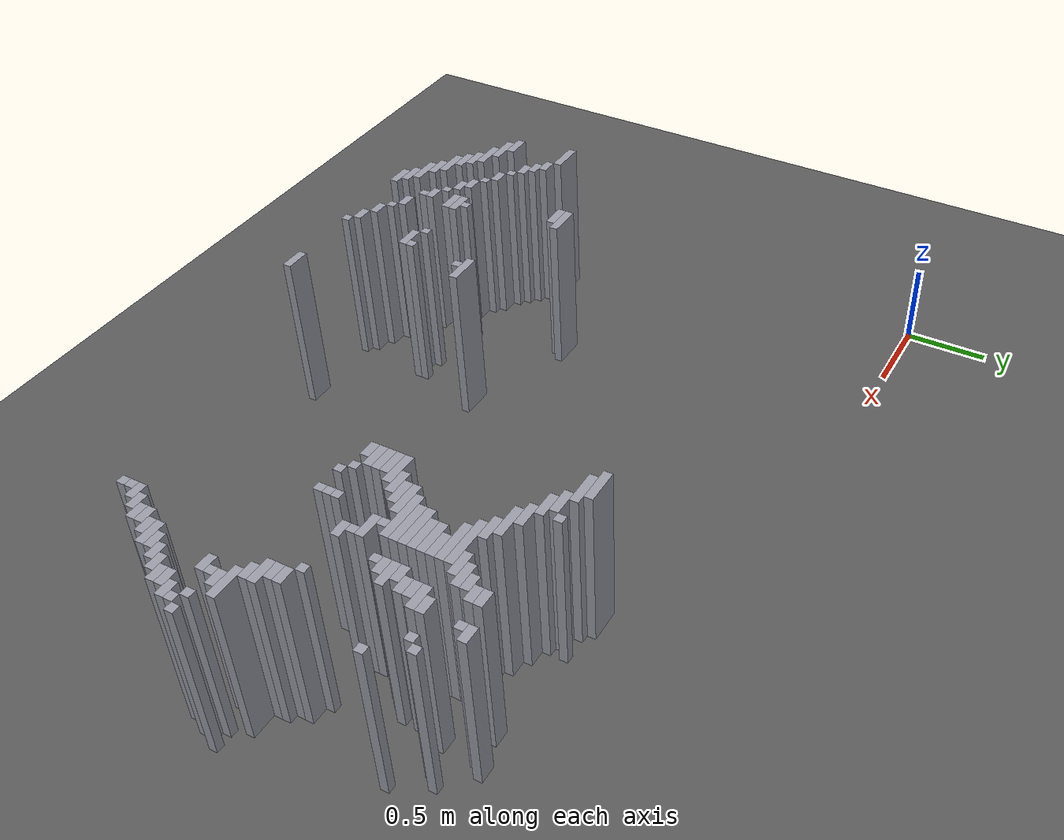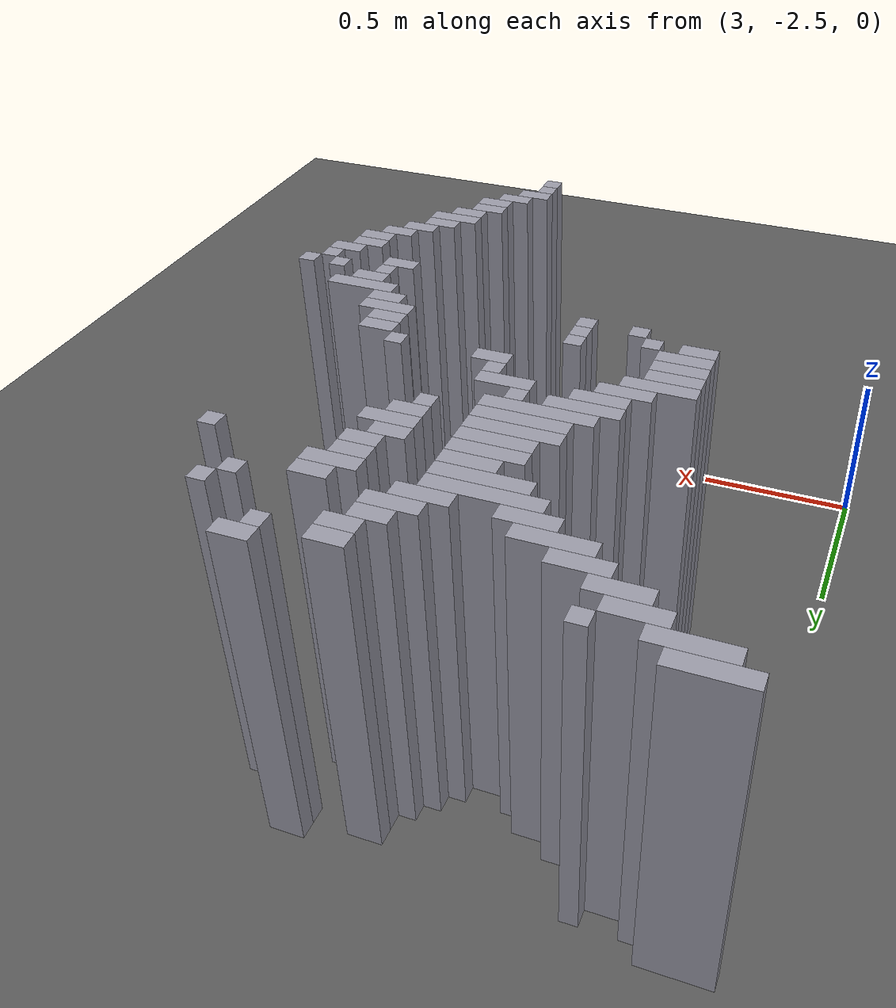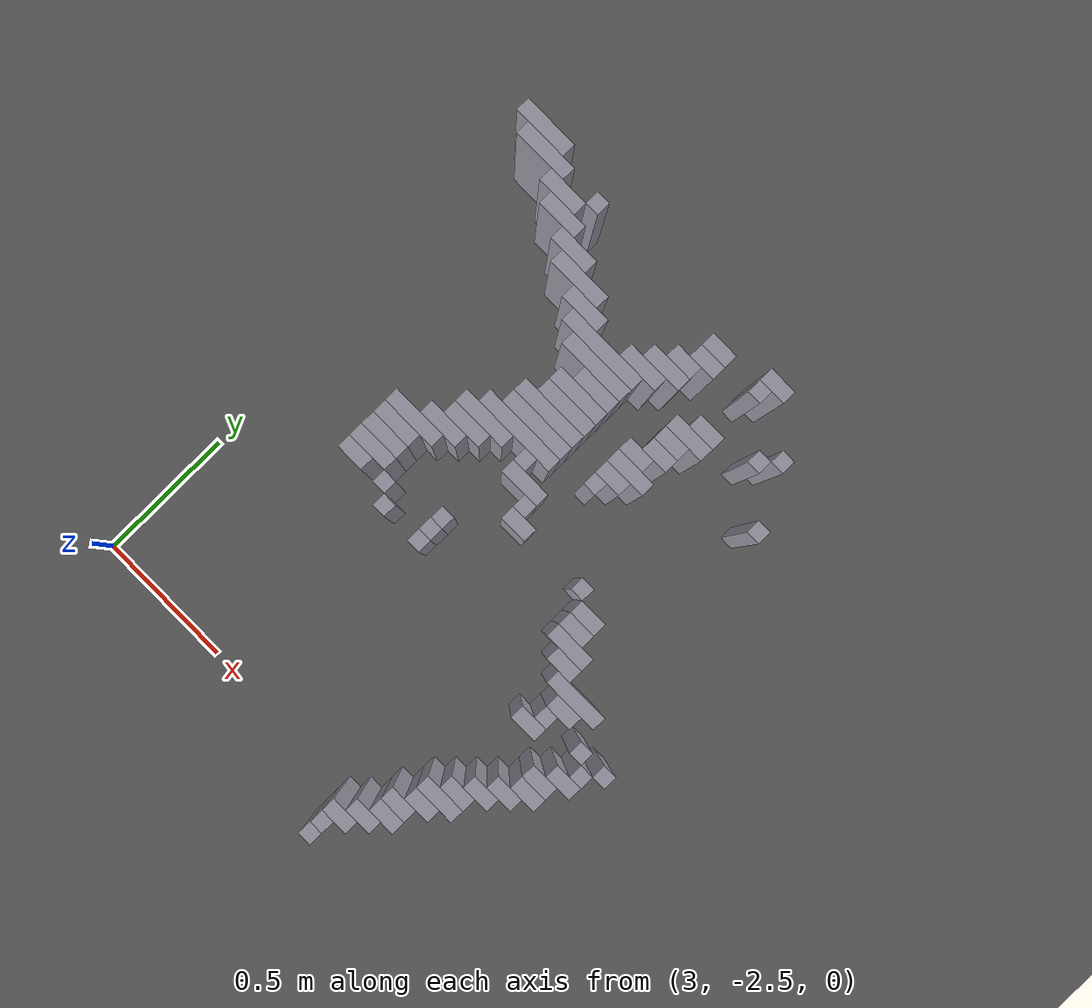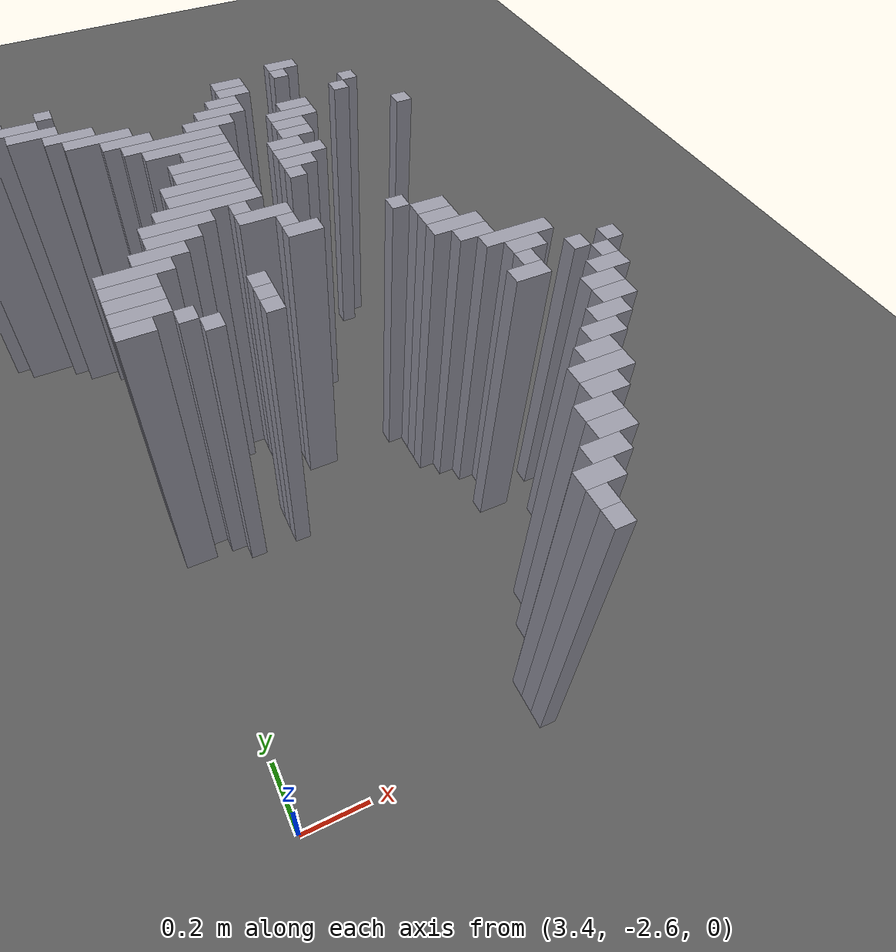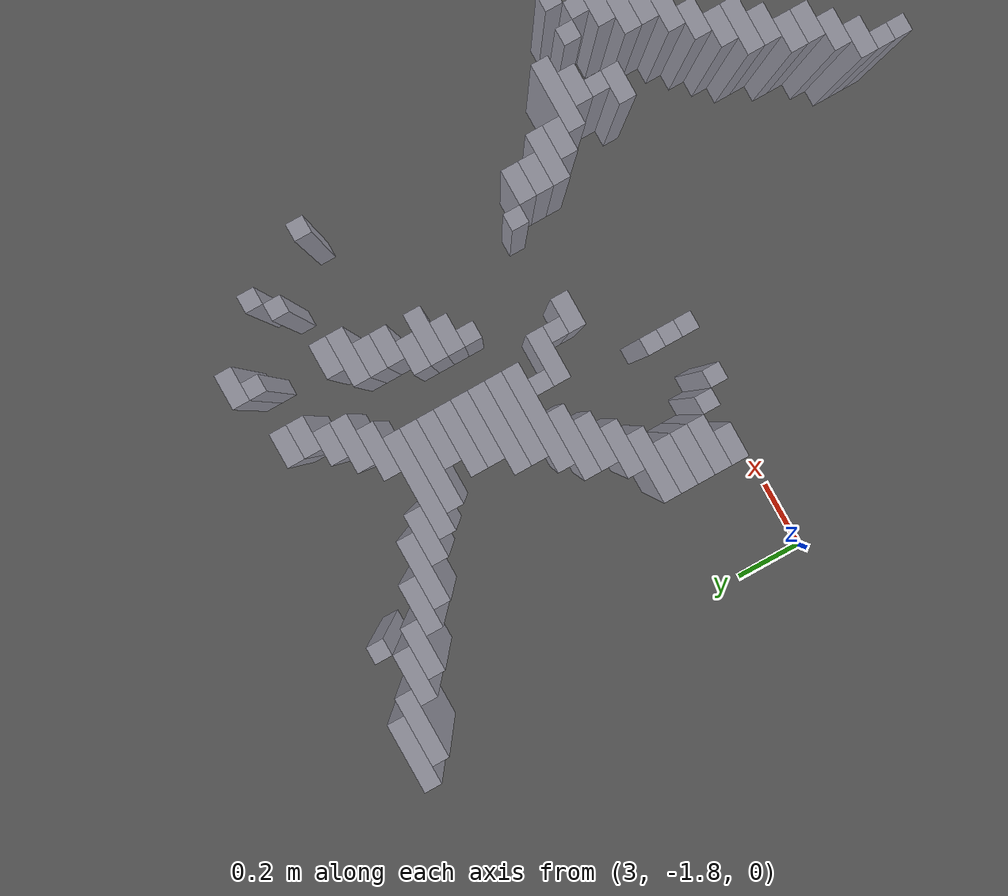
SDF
<sdf version="1.8">
 <world name="dimi">
  <model name="ground">
   <static>true</static>
   <link name="ground_link">
    <collision name="c"><geometry><plane><normal>0 0 1</normal><size>60 60</size></plane></geometry></collision>
    <visual name="v">
     <geometry><plane><normal>0 0 1</normal><size>60 60</size></plane></geometry>
     <material><ambient>0.3 0.3 0.3 1</ambient><diffuse>0.35 0.35 0.35 1</diffuse></material>
    </visual>
   </link>
  </model>
  <model name="walls">
   <static>true</static>
   <link name="wall_180">
    <pose>3.1100 -0.5950 0.5000 0 0 0</pose>
    <collision name="c"><geometry><box><size>0.2000 0.0500 1.0000</size></box></geometry></collision>
    <visual name="v">
     <geometry><box><size>0.2000 0.0500 1.0000</size></box></geometry>
     <material><ambient>0.5 0.5 0.55 1</ambient><diffuse>0.6 0.6 0.65 1</diffuse></material>
    </visual>
   </link>
   <link name="wall_184">
    <pose>3.1600 -0.6450 0.5000 0 0 0</pose>
    <collision name="c"><geometry><box><size>0.2000 0.0500 1.0000</size></box></geometry></collision>
    <visual name="v">
     <geometry><box><size>0.2000 0.0500 1.0000</size></box></geometry>
     <material><ambient>0.5 0.5 0.55 1</ambient><diffuse>0.6 0.6 0.65 1</diffuse></material>
    </visual>
   </link>
   <link name="wall_185">
    <pose>3.3850 -0.6450 0.5000 0 0 0</pose>
    <collision name="c"><geometry><box><size>0.0500 0.0500 1.0000</size></box></geometry></collision>
    <visual name="v">
     <geometry><box><size>0.0500 0.0500 1.0000</size></box></geometry>
     <material><ambient>0.5 0.5 0.55 1</ambient><diffuse>0.6 0.6 0.65 1</diffuse></material>
    </visual>
   </link>
   <link name="wall_186">
    <pose>4.1600 -0.6450 0.5000 0 0 0</pose>
    <collision name="c"><geometry><box><size>0.1000 0.0500 1.0000</size></box></geometry></collision>
    <visual name="v">
     <geometry><box><size>0.1000 0.0500 1.0000</size></box></geometry>
     <material><ambient>0.5 0.5 0.55 1</ambient><diffuse>0.6 0.6 0.65 1</diffuse></material>
    </visual>
   </link>
   <link name="wall_189">
    <pose>3.2850 -0.6950 0.5000 0 0 0</pose>
    <collision name="c"><geometry><box><size>0.1500 0.0500 1.0000</size></box></geometry></collision>
    <visual name="v">
     <geometry><box><size>0.1500 0.0500 1.0000</size></box></geometry>
     <material><ambient>0.5 0.5 0.55 1</ambient><diffuse>0.6 0.6 0.65 1</diffuse></material>
    </visual>
   </link>
   <link name="wall_190">
    <pose>3.9600 -0.6950 0.5000 0 0 0</pose>
    <collision name="c"><geometry><box><size>0.1000 0.0500 1.0000</size></box></geometry></collision>
    <visual name="v">
     <geometry><box><size>0.1000 0.0500 1.0000</size></box></geometry>
     <material><ambient>0.5 0.5 0.55 1</ambient><diffuse>0.6 0.6 0.65 1</diffuse></material>
    </visual>
   </link>
   <link name="wall_191">
    <pose>4.1350 -0.6950 0.5000 0 0 0</pose>
    <collision name="c"><geometry><box><size>0.0500 0.0500 1.0000</size></box></geometry></collision>
    <visual name="v">
     <geometry><box><size>0.0500 0.0500 1.0000</size></box></geometry>
     <material><ambient>0.5 0.5 0.55 1</ambient><diffuse>0.6 0.6 0.65 1</diffuse></material>
    </visual>
   </link>
   <link name="wall_193">
    <pose>3.3350 -0.7450 0.5000 0 0 0</pose>
    <collision name="c"><geometry><box><size>0.1500 0.0500 1.0000</size></box></geometry></collision>
    <visual name="v">
     <geometry><box><size>0.1500 0.0500 1.0000</size></box></geometry>
     <material><ambient>0.5 0.5 0.55 1</ambient><diffuse>0.6 0.6 0.65 1</diffuse></material>
    </visual>
   </link>
   <link name="wall_194">
    <pose>3.9600 -0.7450 0.5000 0 0 0</pose>
    <collision name="c"><geometry><box><size>0.1000 0.0500 1.0000</size></box></geometry></collision>
    <visual name="v">
     <geometry><box><size>0.1000 0.0500 1.0000</size></box></geometry>
     <material><ambient>0.5 0.5 0.55 1</ambient><diffuse>0.6 0.6 0.65 1</diffuse></material>
    </visual>
   </link>
   <link name="wall_196">
    <pose>3.4350 -0.7950 0.5000 0 0 0</pose>
    <collision name="c"><geometry><box><size>0.1500 0.0500 1.0000</size></box></geometry></collision>
    <visual name="v">
     <geometry><box><size>0.1500 0.0500 1.0000</size></box></geometry>
     <material><ambient>0.5 0.5 0.55 1</ambient><diffuse>0.6 0.6 0.65 1</diffuse></material>
    </visual>
   </link>
   <link name="wall_197">
    <pose>3.9100 -0.7950 0.5000 0 0 0</pose>
    <collision name="c"><geometry><box><size>0.1000 0.0500 1.0000</size></box></geometry></collision>
    <visual name="v">
     <geometry><box><size>0.1000 0.0500 1.0000</size></box></geometry>
     <material><ambient>0.5 0.5 0.55 1</ambient><diffuse>0.6 0.6 0.65 1</diffuse></material>
    </visual>
   </link>
   <link name="wall_198">
    <pose>4.3350 -0.7950 0.5000 0 0 0</pose>
    <collision name="c"><geometry><box><size>0.0500 0.0500 1.0000</size></box></geometry></collision>
    <visual name="v">
     <geometry><box><size>0.0500 0.0500 1.0000</size></box></geometry>
     <material><ambient>0.5 0.5 0.55 1</ambient><diffuse>0.6 0.6 0.65 1</diffuse></material>
    </visual>
   </link>
   <link name="wall_200">
    <pose>3.5100 -0.8450 0.5000 0 0 0</pose>
    <collision name="c"><geometry><box><size>0.2000 0.0500 1.0000</size></box></geometry></collision>
    <visual name="v">
     <geometry><box><size>0.2000 0.0500 1.0000</size></box></geometry>
     <material><ambient>0.5 0.5 0.55 1</ambient><diffuse>0.6 0.6 0.65 1</diffuse></material>
    </visual>
   </link>
   <link name="wall_201">
    <pose>3.8850 -0.8450 0.5000 0 0 0</pose>
    <collision name="c"><geometry><box><size>0.1500 0.0500 1.0000</size></box></geometry></collision>
    <visual name="v">
     <geometry><box><size>0.1500 0.0500 1.0000</size></box></geometry>
     <material><ambient>0.5 0.5 0.55 1</ambient><diffuse>0.6 0.6 0.65 1</diffuse></material>
    </visual>
   </link>
   <link name="wall_202">
    <pose>4.2850 -0.8450 0.5000 0 0 0</pose>
    <collision name="c"><geometry><box><size>0.0500 0.0500 1.0000</size></box></geometry></collision>
    <visual name="v">
     <geometry><box><size>0.0500 0.0500 1.0000</size></box></geometry>
     <material><ambient>0.5 0.5 0.55 1</ambient><diffuse>0.6 0.6 0.65 1</diffuse></material>
    </visual>
   </link>
   <link name="wall_205">
    <pose>3.5850 -0.8950 0.5000 0 0 0</pose>
    <collision name="c"><geometry><box><size>0.1500 0.0500 1.0000</size></box></geometry></collision>
    <visual name="v">
     <geometry><box><size>0.1500 0.0500 1.0000</size></box></geometry>
     <material><ambient>0.5 0.5 0.55 1</ambient><diffuse>0.6 0.6 0.65 1</diffuse></material>
    </visual>
   </link>
   <link name="wall_206">
    <pose>3.8350 -0.8950 0.5000 0 0 0</pose>
    <collision name="c"><geometry><box><size>0.1500 0.0500 1.0000</size></box></geometry></collision>
    <visual name="v">
     <geometry><box><size>0.1500 0.0500 1.0000</size></box></geometry>
     <material><ambient>0.5 0.5 0.55 1</ambient><diffuse>0.6 0.6 0.65 1</diffuse></material>
    </visual>
   </link>
   <link name="wall_207">
    <pose>4.1100 -0.8950 0.5000 0 0 0</pose>
    <collision name="c"><geometry><box><size>0.1000 0.0500 1.0000</size></box></geometry></collision>
    <visual name="v">
     <geometry><box><size>0.1000 0.0500 1.0000</size></box></geometry>
     <material><ambient>0.5 0.5 0.55 1</ambient><diffuse>0.6 0.6 0.65 1</diffuse></material>
    </visual>
   </link>
   <link name="wall_209">
    <pose>3.7100 -0.9450 0.5000 0 0 0</pose>
    <collision name="c"><geometry><box><size>0.3000 0.0500 1.0000</size></box></geometry></collision>
    <visual name="v">
     <geometry><box><size>0.3000 0.0500 1.0000</size></box></geometry>
     <material><ambient>0.5 0.5 0.55 1</ambient><diffuse>0.6 0.6 0.65 1</diffuse></material>
    </visual>
   </link>
   <link name="wall_210">
    <pose>4.0850 -0.9450 0.5000 0 0 0</pose>
    <collision name="c"><geometry><box><size>0.1500 0.0500 1.0000</size></box></geometry></collision>
    <visual name="v">
     <geometry><box><size>0.1500 0.0500 1.0000</size></box></geometry>
     <material><ambient>0.5 0.5 0.55 1</ambient><diffuse>0.6 0.6 0.65 1</diffuse></material>
    </visual>
   </link>
   <link name="wall_212">
    <pose>3.7350 -0.9950 0.5000 0 0 0</pose>
    <collision name="c"><geometry><box><size>0.2500 0.0500 1.0000</size></box></geometry></collision>
    <visual name="v">
     <geometry><box><size>0.2500 0.0500 1.0000</size></box></geometry>
     <material><ambient>0.5 0.5 0.55 1</ambient><diffuse>0.6 0.6 0.65 1</diffuse></material>
    </visual>
   </link>
   <link name="wall_213">
    <pose>4.0600 -0.9950 0.5000 0 0 0</pose>
    <collision name="c"><geometry><box><size>0.1000 0.0500 1.0000</size></box></geometry></collision>
    <visual name="v">
     <geometry><box><size>0.1000 0.0500 1.0000</size></box></geometry>
     <material><ambient>0.5 0.5 0.55 1</ambient><diffuse>0.6 0.6 0.65 1</diffuse></material>
    </visual>
   </link>
   <link name="wall_214">
    <pose>4.4350 -0.9950 0.5000 0 0 0</pose>
    <collision name="c"><geometry><box><size>0.0500 0.0500 1.0000</size></box></geometry></collision>
    <visual name="v">
     <geometry><box><size>0.0500 0.0500 1.0000</size></box></geometry>
     <material><ambient>0.5 0.5 0.55 1</ambient><diffuse>0.6 0.6 0.65 1</diffuse></material>
    </visual>
   </link>
   <link name="wall_216">
    <pose>3.7850 -1.0450 0.5000 0 0 0</pose>
    <collision name="c"><geometry><box><size>0.1500 0.0500 1.0000</size></box></geometry></collision>
    <visual name="v">
     <geometry><box><size>0.1500 0.0500 1.0000</size></box></geometry>
     <material><ambient>0.5 0.5 0.55 1</ambient><diffuse>0.6 0.6 0.65 1</diffuse></material>
    </visual>
   </link>
   <link name="wall_217">
    <pose>4.0600 -1.0450 0.5000 0 0 0</pose>
    <collision name="c"><geometry><box><size>0.1000 0.0500 1.0000</size></box></geometry></collision>
    <visual name="v">
     <geometry><box><size>0.1000 0.0500 1.0000</size></box></geometry>
     <material><ambient>0.5 0.5 0.55 1</ambient><diffuse>0.6 0.6 0.65 1</diffuse></material>
    </visual>
   </link>
   <link name="wall_219">
    <pose>3.7600 -1.0950 0.5000 0 0 0</pose>
    <collision name="c"><geometry><box><size>0.2000 0.0500 1.0000</size></box></geometry></collision>
    <visual name="v">
     <geometry><box><size>0.2000 0.0500 1.0000</size></box></geometry>
     <material><ambient>0.5 0.5 0.55 1</ambient><diffuse>0.6 0.6 0.65 1</diffuse></material>
    </visual>
   </link>
   <link name="wall_220">
    <pose>4.0100 -1.0950 0.5000 0 0 0</pose>
    <collision name="c"><geometry><box><size>0.1000 0.0500 1.0000</size></box></geometry></collision>
    <visual name="v">
     <geometry><box><size>0.1000 0.0500 1.0000</size></box></geometry>
     <material><ambient>0.5 0.5 0.55 1</ambient><diffuse>0.6 0.6 0.65 1</diffuse></material>
    </visual>
   </link>
   <link name="wall_223">
    <pose>3.7600 -1.1450 0.5000 0 0 0</pose>
    <collision name="c"><geometry><box><size>0.2000 0.0500 1.0000</size></box></geometry></collision>
    <visual name="v">
     <geometry><box><size>0.2000 0.0500 1.0000</size></box></geometry>
     <material><ambient>0.5 0.5 0.55 1</ambient><diffuse>0.6 0.6 0.65 1</diffuse></material>
    </visual>
   </link>
   <link name="wall_224">
    <pose>4.0350 -1.1450 0.5000 0 0 0</pose>
    <collision name="c"><geometry><box><size>0.1500 0.0500 1.0000</size></box></geometry></collision>
    <visual name="v">
     <geometry><box><size>0.1500 0.0500 1.0000</size></box></geometry>
     <material><ambient>0.5 0.5 0.55 1</ambient><diffuse>0.6 0.6 0.65 1</diffuse></material>
    </visual>
   </link>
   <link name="wall_226">
    <pose>3.7350 -1.1950 0.5000 0 0 0</pose>
    <collision name="c"><geometry><box><size>0.2500 0.0500 1.0000</size></box></geometry></collision>
    <visual name="v">
     <geometry><box><size>0.2500 0.0500 1.0000</size></box></geometry>
     <material><ambient>0.5 0.5 0.55 1</ambient><diffuse>0.6 0.6 0.65 1</diffuse></material>
    </visual>
   </link>
   <link name="wall_227">
    <pose>4.0100 -1.1950 0.5000 0 0 0</pose>
    <collision name="c"><geometry><box><size>0.1000 0.0500 1.0000</size></box></geometry></collision>
    <visual name="v">
     <geometry><box><size>0.1000 0.0500 1.0000</size></box></geometry>
     <material><ambient>0.5 0.5 0.55 1</ambient><diffuse>0.6 0.6 0.65 1</diffuse></material>
    </visual>
   </link>
   <link name="wall_230">
    <pose>3.7350 -1.2450 0.5000 0 0 0</pose>
    <collision name="c"><geometry><box><size>0.2500 0.0500 1.0000</size></box></geometry></collision>
    <visual name="v">
     <geometry><box><size>0.2500 0.0500 1.0000</size></box></geometry>
     <material><ambient>0.5 0.5 0.55 1</ambient><diffuse>0.6 0.6 0.65 1</diffuse></material>
    </visual>
   </link>
   <link name="wall_231">
    <pose>3.9850 -1.2450 0.5000 0 0 0</pose>
    <collision name="c"><geometry><box><size>0.0500 0.0500 1.0000</size></box></geometry></collision>
    <visual name="v">
     <geometry><box><size>0.0500 0.0500 1.0000</size></box></geometry>
     <material><ambient>0.5 0.5 0.55 1</ambient><diffuse>0.6 0.6 0.65 1</diffuse></material>
    </visual>
   </link>
   <link name="wall_234">
    <pose>3.7100 -1.2950 0.5000 0 0 0</pose>
    <collision name="c"><geometry><box><size>0.3000 0.0500 1.0000</size></box></geometry></collision>
    <visual name="v">
     <geometry><box><size>0.3000 0.0500 1.0000</size></box></geometry>
     <material><ambient>0.5 0.5 0.55 1</ambient><diffuse>0.6 0.6 0.65 1</diffuse></material>
    </visual>
   </link>
   <link name="wall_237">
    <pose>3.6100 -1.3450 0.5000 0 0 0</pose>
    <collision name="c"><geometry><box><size>0.2000 0.0500 1.0000</size></box></geometry></collision>
    <visual name="v">
     <geometry><box><size>0.2000 0.0500 1.0000</size></box></geometry>
     <material><ambient>0.5 0.5 0.55 1</ambient><diffuse>0.6 0.6 0.65 1</diffuse></material>
    </visual>
   </link>
   <link name="wall_238">
    <pose>3.7850 -1.3450 0.5000 0 0 0</pose>
    <collision name="c"><geometry><box><size>0.0500 0.0500 1.0000</size></box></geometry></collision>
    <visual name="v">
     <geometry><box><size>0.0500 0.0500 1.0000</size></box></geometry>
     <material><ambient>0.5 0.5 0.55 1</ambient><diffuse>0.6 0.6 0.65 1</diffuse></material>
    </visual>
   </link>
   <link name="wall_242">
    <pose>3.5850 -1.3950 0.5000 0 0 0</pose>
    <collision name="c"><geometry><box><size>0.1500 0.0500 1.0000</size></box></geometry></collision>
    <visual name="v">
     <geometry><box><size>0.1500 0.0500 1.0000</size></box></geometry>
     <material><ambient>0.5 0.5 0.55 1</ambient><diffuse>0.6 0.6 0.65 1</diffuse></material>
    </visual>
   </link>
   <link name="wall_243">
    <pose>3.8350 -1.3950 0.5000 0 0 0</pose>
    <collision name="c"><geometry><box><size>0.1500 0.0500 1.0000</size></box></geometry></collision>
    <visual name="v">
     <geometry><box><size>0.1500 0.0500 1.0000</size></box></geometry>
     <material><ambient>0.5 0.5 0.55 1</ambient><diffuse>0.6 0.6 0.65 1</diffuse></material>
    </visual>
   </link>
   <link name="wall_246">
    <pose>3.5350 -1.4450 0.5000 0 0 0</pose>
    <collision name="c"><geometry><box><size>0.1500 0.0500 1.0000</size></box></geometry></collision>
    <visual name="v">
     <geometry><box><size>0.1500 0.0500 1.0000</size></box></geometry>
     <material><ambient>0.5 0.5 0.55 1</ambient><diffuse>0.6 0.6 0.65 1</diffuse></material>
    </visual>
   </link>
   <link name="wall_247">
    <pose>3.8850 -1.4450 0.5000 0 0 0</pose>
    <collision name="c"><geometry><box><size>0.0500 0.0500 1.0000</size></box></geometry></collision>
    <visual name="v">
     <geometry><box><size>0.0500 0.0500 1.0000</size></box></geometry>
     <material><ambient>0.5 0.5 0.55 1</ambient><diffuse>0.6 0.6 0.65 1</diffuse></material>
    </visual>
   </link>
   <link name="wall_251">
    <pose>3.4600 -1.4950 0.5000 0 0 0</pose>
    <collision name="c"><geometry><box><size>0.2000 0.0500 1.0000</size></box></geometry></collision>
    <visual name="v">
     <geometry><box><size>0.2000 0.0500 1.0000</size></box></geometry>
     <material><ambient>0.5 0.5 0.55 1</ambient><diffuse>0.6 0.6 0.65 1</diffuse></material>
    </visual>
   </link>
   <link name="wall_252">
    <pose>3.9100 -1.4950 0.5000 0 0 0</pose>
    <collision name="c"><geometry><box><size>0.1000 0.0500 1.0000</size></box></geometry></collision>
    <visual name="v">
     <geometry><box><size>0.1000 0.0500 1.0000</size></box></geometry>
     <material><ambient>0.5 0.5 0.55 1</ambient><diffuse>0.6 0.6 0.65 1</diffuse></material>
    </visual>
   </link>
   <link name="wall_253">
    <pose>4.1850 -1.4950 0.5000 0 0 0</pose>
    <collision name="c"><geometry><box><size>0.0500 0.0500 1.0000</size></box></geometry></collision>
    <visual name="v">
     <geometry><box><size>0.0500 0.0500 1.0000</size></box></geometry>
     <material><ambient>0.5 0.5 0.55 1</ambient><diffuse>0.6 0.6 0.65 1</diffuse></material>
    </visual>
   </link>
   <link name="wall_256">
    <pose>3.4350 -1.5450 0.5000 0 0 0</pose>
    <collision name="c"><geometry><box><size>0.1500 0.0500 1.0000</size></box></geometry></collision>
    <visual name="v">
     <geometry><box><size>0.1500 0.0500 1.0000</size></box></geometry>
     <material><ambient>0.5 0.5 0.55 1</ambient><diffuse>0.6 0.6 0.65 1</diffuse></material>
    </visual>
   </link>
   <link name="wall_257">
    <pose>4.2600 -1.5450 0.5000 0 0 0</pose>
    <collision name="c"><geometry><box><size>0.1000 0.0500 1.0000</size></box></geometry></collision>
    <visual name="v">
     <geometry><box><size>0.1000 0.0500 1.0000</size></box></geometry>
     <material><ambient>0.5 0.5 0.55 1</ambient><diffuse>0.6 0.6 0.65 1</diffuse></material>
    </visual>
   </link>
   <link name="wall_260">
    <pose>3.4350 -1.5950 0.5000 0 0 0</pose>
    <collision name="c"><geometry><box><size>0.1500 0.0500 1.0000</size></box></geometry></collision>
    <visual name="v">
     <geometry><box><size>0.1500 0.0500 1.0000</size></box></geometry>
     <material><ambient>0.5 0.5 0.55 1</ambient><diffuse>0.6 0.6 0.65 1</diffuse></material>
    </visual>
   </link>
   <link name="wall_261">
    <pose>4.2600 -1.5950 0.5000 0 0 0</pose>
    <collision name="c"><geometry><box><size>0.1000 0.0500 1.0000</size></box></geometry></collision>
    <visual name="v">
     <geometry><box><size>0.1000 0.0500 1.0000</size></box></geometry>
     <material><ambient>0.5 0.5 0.55 1</ambient><diffuse>0.6 0.6 0.65 1</diffuse></material>
    </visual>
   </link>
   <link name="wall_264">
    <pose>3.4350 -1.6450 0.5000 0 0 0</pose>
    <collision name="c"><geometry><box><size>0.1500 0.0500 1.0000</size></box></geometry></collision>
    <visual name="v">
     <geometry><box><size>0.1500 0.0500 1.0000</size></box></geometry>
     <material><ambient>0.5 0.5 0.55 1</ambient><diffuse>0.6 0.6 0.65 1</diffuse></material>
    </visual>
   </link>
   <link name="wall_265">
    <pose>3.7350 -1.6450 0.5000 0 0 0</pose>
    <collision name="c"><geometry><box><size>0.0500 0.0500 1.0000</size></box></geometry></collision>
    <visual name="v">
     <geometry><box><size>0.0500 0.0500 1.0000</size></box></geometry>
     <material><ambient>0.5 0.5 0.55 1</ambient><diffuse>0.6 0.6 0.65 1</diffuse></material>
    </visual>
   </link>
   <link name="wall_266">
    <pose>4.2850 -1.6450 0.5000 0 0 0</pose>
    <collision name="c"><geometry><box><size>0.1500 0.0500 1.0000</size></box></geometry></collision>
    <visual name="v">
     <geometry><box><size>0.1500 0.0500 1.0000</size></box></geometry>
     <material><ambient>0.5 0.5 0.55 1</ambient><diffuse>0.6 0.6 0.65 1</diffuse></material>
    </visual>
   </link>
   <link name="wall_271">
    <pose>3.4100 -1.6950 0.5000 0 0 0</pose>
    <collision name="c"><geometry><box><size>0.1000 0.0500 1.0000</size></box></geometry></collision>
    <visual name="v">
     <geometry><box><size>0.1000 0.0500 1.0000</size></box></geometry>
     <material><ambient>0.5 0.5 0.55 1</ambient><diffuse>0.6 0.6 0.65 1</diffuse></material>
    </visual>
   </link>
   <link name="wall_272">
    <pose>3.5350 -1.6950 0.5000 0 0 0</pose>
    <collision name="c"><geometry><box><size>0.0500 0.0500 1.0000</size></box></geometry></collision>
    <visual name="v">
     <geometry><box><size>0.0500 0.0500 1.0000</size></box></geometry>
     <material><ambient>0.5 0.5 0.55 1</ambient><diffuse>0.6 0.6 0.65 1</diffuse></material>
    </visual>
   </link>
   <link name="wall_273">
    <pose>3.7350 -1.6950 0.5000 0 0 0</pose>
    <collision name="c"><geometry><box><size>0.0500 0.0500 1.0000</size></box></geometry></collision>
    <visual name="v">
     <geometry><box><size>0.0500 0.0500 1.0000</size></box></geometry>
     <material><ambient>0.5 0.5 0.55 1</ambient><diffuse>0.6 0.6 0.65 1</diffuse></material>
    </visual>
   </link>
   <link name="wall_274">
    <pose>4.3100 -1.6950 0.5000 0 0 0</pose>
    <collision name="c"><geometry><box><size>0.1000 0.0500 1.0000</size></box></geometry></collision>
    <visual name="v">
     <geometry><box><size>0.1000 0.0500 1.0000</size></box></geometry>
     <material><ambient>0.5 0.5 0.55 1</ambient><diffuse>0.6 0.6 0.65 1</diffuse></material>
    </visual>
   </link>
   <link name="wall_279">
    <pose>3.5850 -1.7450 0.5000 0 0 0</pose>
    <collision name="c"><geometry><box><size>0.0500 0.0500 1.0000</size></box></geometry></collision>
    <visual name="v">
     <geometry><box><size>0.0500 0.0500 1.0000</size></box></geometry>
     <material><ambient>0.5 0.5 0.55 1</ambient><diffuse>0.6 0.6 0.65 1</diffuse></material>
    </visual>
   </link>
   <link name="wall_280">
    <pose>3.7350 -1.7450 0.5000 0 0 0</pose>
    <collision name="c"><geometry><box><size>0.0500 0.0500 1.0000</size></box></geometry></collision>
    <visual name="v">
     <geometry><box><size>0.0500 0.0500 1.0000</size></box></geometry>
     <material><ambient>0.5 0.5 0.55 1</ambient><diffuse>0.6 0.6 0.65 1</diffuse></material>
    </visual>
   </link>
   <link name="wall_281">
    <pose>4.4100 -1.7450 0.5000 0 0 0</pose>
    <collision name="c"><geometry><box><size>0.2000 0.0500 1.0000</size></box></geometry></collision>
    <visual name="v">
     <geometry><box><size>0.2000 0.0500 1.0000</size></box></geometry>
     <material><ambient>0.5 0.5 0.55 1</ambient><diffuse>0.6 0.6 0.65 1</diffuse></material>
    </visual>
   </link>
   <link name="wall_288">
    <pose>4.4100 -1.7950 0.5000 0 0 0</pose>
    <collision name="c"><geometry><box><size>0.1000 0.0500 1.0000</size></box></geometry></collision>
    <visual name="v">
     <geometry><box><size>0.1000 0.0500 1.0000</size></box></geometry>
     <material><ambient>0.5 0.5 0.55 1</ambient><diffuse>0.6 0.6 0.65 1</diffuse></material>
    </visual>
   </link>
   <link name="wall_296">
    <pose>4.3850 -1.8450 0.5000 0 0 0</pose>
    <collision name="c"><geometry><box><size>0.0500 0.0500 1.0000</size></box></geometry></collision>
    <visual name="v">
     <geometry><box><size>0.0500 0.0500 1.0000</size></box></geometry>
     <material><ambient>0.5 0.5 0.55 1</ambient><diffuse>0.6 0.6 0.65 1</diffuse></material>
    </visual>
   </link>
   <link name="wall_297">
    <pose>4.5350 -1.8450 0.5000 0 0 0</pose>
    <collision name="c"><geometry><box><size>0.0500 0.0500 1.0000</size></box></geometry></collision>
    <visual name="v">
     <geometry><box><size>0.0500 0.0500 1.0000</size></box></geometry>
     <material><ambient>0.5 0.5 0.55 1</ambient><diffuse>0.6 0.6 0.65 1</diffuse></material>
    </visual>
   </link>
   <link name="wall_298">
    <pose>4.6350 -1.8450 0.5000 0 0 0</pose>
    <collision name="c"><geometry><box><size>0.0500 0.0500 1.0000</size></box></geometry></collision>
    <visual name="v">
     <geometry><box><size>0.0500 0.0500 1.0000</size></box></geometry>
     <material><ambient>0.5 0.5 0.55 1</ambient><diffuse>0.6 0.6 0.65 1</diffuse></material>
    </visual>
   </link>
   <link name="wall_301">
    <pose>1.2100 -1.8950 0.5000 0 0 0</pose>
    <collision name="c"><geometry><box><size>0.2000 0.0500 1.0000</size></box></geometry></collision>
    <visual name="v">
     <geometry><box><size>0.2000 0.0500 1.0000</size></box></geometry>
     <material><ambient>0.5 0.5 0.55 1</ambient><diffuse>0.6 0.6 0.65 1</diffuse></material>
    </visual>
   </link>
   <link name="wall_302">
    <pose>4.3600 -1.8950 0.5000 0 0 0</pose>
    <collision name="c"><geometry><box><size>0.1000 0.0500 1.0000</size></box></geometry></collision>
    <visual name="v">
     <geometry><box><size>0.1000 0.0500 1.0000</size></box></geometry>
     <material><ambient>0.5 0.5 0.55 1</ambient><diffuse>0.6 0.6 0.65 1</diffuse></material>
    </visual>
   </link>
   <link name="wall_303">
    <pose>4.5850 -1.8950 0.5000 0 0 0</pose>
    <collision name="c"><geometry><box><size>0.0500 0.0500 1.0000</size></box></geometry></collision>
    <visual name="v">
     <geometry><box><size>0.0500 0.0500 1.0000</size></box></geometry>
     <material><ambient>0.5 0.5 0.55 1</ambient><diffuse>0.6 0.6 0.65 1</diffuse></material>
    </visual>
   </link>
   <link name="wall_307">
    <pose>1.1850 -1.9450 0.5000 0 0 0</pose>
    <collision name="c"><geometry><box><size>0.1500 0.0500 1.0000</size></box></geometry></collision>
    <visual name="v">
     <geometry><box><size>0.1500 0.0500 1.0000</size></box></geometry>
     <material><ambient>0.5 0.5 0.55 1</ambient><diffuse>0.6 0.6 0.65 1</diffuse></material>
    </visual>
   </link>
   <link name="wall_308">
    <pose>4.5600 -1.9450 0.5000 0 0 0</pose>
    <collision name="c"><geometry><box><size>0.1000 0.0500 1.0000</size></box></geometry></collision>
    <visual name="v">
     <geometry><box><size>0.1000 0.0500 1.0000</size></box></geometry>
     <material><ambient>0.5 0.5 0.55 1</ambient><diffuse>0.6 0.6 0.65 1</diffuse></material>
    </visual>
   </link>
   <link name="wall_312">
    <pose>4.5100 -1.9950 0.5000 0 0 0</pose>
    <collision name="c"><geometry><box><size>0.1000 0.0500 1.0000</size></box></geometry></collision>
    <visual name="v">
     <geometry><box><size>0.1000 0.0500 1.0000</size></box></geometry>
     <material><ambient>0.5 0.5 0.55 1</ambient><diffuse>0.6 0.6 0.65 1</diffuse></material>
    </visual>
   </link>
   <link name="wall_317">
    <pose>4.5100 -2.0450 0.5000 0 0 0</pose>
    <collision name="c"><geometry><box><size>0.1000 0.0500 1.0000</size></box></geometry></collision>
    <visual name="v">
     <geometry><box><size>0.1000 0.0500 1.0000</size></box></geometry>
     <material><ambient>0.5 0.5 0.55 1</ambient><diffuse>0.6 0.6 0.65 1</diffuse></material>
    </visual>
   </link>
   <link name="wall_323">
    <pose>4.4600 -2.0950 0.5000 0 0 0</pose>
    <collision name="c"><geometry><box><size>0.1000 0.0500 1.0000</size></box></geometry></collision>
    <visual name="v">
     <geometry><box><size>0.1000 0.0500 1.0000</size></box></geometry>
     <material><ambient>0.5 0.5 0.55 1</ambient><diffuse>0.6 0.6 0.65 1</diffuse></material>
    </visual>
   </link>
   <link name="wall_329">
    <pose>1.9100 -2.1450 0.5000 0 0 0</pose>
    <collision name="c"><geometry><box><size>0.2000 0.0500 1.0000</size></box></geometry></collision>
    <visual name="v">
     <geometry><box><size>0.2000 0.0500 1.0000</size></box></geometry>
     <material><ambient>0.5 0.5 0.55 1</ambient><diffuse>0.6 0.6 0.65 1</diffuse></material>
    </visual>
   </link>
   <link name="wall_330">
    <pose>4.4100 -2.1450 0.5000 0 0 0</pose>
    <collision name="c"><geometry><box><size>0.1000 0.0500 1.0000</size></box></geometry></collision>
    <visual name="v">
     <geometry><box><size>0.1000 0.0500 1.0000</size></box></geometry>
     <material><ambient>0.5 0.5 0.55 1</ambient><diffuse>0.6 0.6 0.65 1</diffuse></material>
    </visual>
   </link>
   <link name="wall_334">
    <pose>1.8850 -2.1950 0.5000 0 0 0</pose>
    <collision name="c"><geometry><box><size>0.0500 0.0500 1.0000</size></box></geometry></collision>
    <visual name="v">
     <geometry><box><size>0.0500 0.0500 1.0000</size></box></geometry>
     <material><ambient>0.5 0.5 0.55 1</ambient><diffuse>0.6 0.6 0.65 1</diffuse></material>
    </visual>
   </link>
   <link name="wall_335">
    <pose>4.3600 -2.1950 0.5000 0 0 0</pose>
    <collision name="c"><geometry><box><size>0.1000 0.0500 1.0000</size></box></geometry></collision>
    <visual name="v">
     <geometry><box><size>0.1000 0.0500 1.0000</size></box></geometry>
     <material><ambient>0.5 0.5 0.55 1</ambient><diffuse>0.6 0.6 0.65 1</diffuse></material>
    </visual>
   </link>
   <link name="wall_338">
    <pose>0.5600 -2.2450 0.5000 0 0 0</pose>
    <collision name="c"><geometry><box><size>0.2000 0.0500 1.0000</size></box></geometry></collision>
    <visual name="v">
     <geometry><box><size>0.2000 0.0500 1.0000</size></box></geometry>
     <material><ambient>0.5 0.5 0.55 1</ambient><diffuse>0.6 0.6 0.65 1</diffuse></material>
    </visual>
   </link>
   <link name="wall_339">
    <pose>4.3350 -2.2450 0.5000 0 0 0</pose>
    <collision name="c"><geometry><box><size>0.1500 0.0500 1.0000</size></box></geometry></collision>
    <visual name="v">
     <geometry><box><size>0.1500 0.0500 1.0000</size></box></geometry>
     <material><ambient>0.5 0.5 0.55 1</ambient><diffuse>0.6 0.6 0.65 1</diffuse></material>
    </visual>
   </link>
   <link name="wall_342">
    <pose>0.7100 -2.2950 0.5000 0 0 0</pose>
    <collision name="c"><geometry><box><size>0.1000 0.0500 1.0000</size></box></geometry></collision>
    <visual name="v">
     <geometry><box><size>0.1000 0.0500 1.0000</size></box></geometry>
     <material><ambient>0.5 0.5 0.55 1</ambient><diffuse>0.6 0.6 0.65 1</diffuse></material>
    </visual>
   </link>
   <link name="wall_343">
    <pose>4.3100 -2.2950 0.5000 0 0 0</pose>
    <collision name="c"><geometry><box><size>0.1000 0.0500 1.0000</size></box></geometry></collision>
    <visual name="v">
     <geometry><box><size>0.1000 0.0500 1.0000</size></box></geometry>
     <material><ambient>0.5 0.5 0.55 1</ambient><diffuse>0.6 0.6 0.65 1</diffuse></material>
    </visual>
   </link>
   <link name="wall_345">
    <pose>0.7600 -2.3450 0.5000 0 0 0</pose>
    <collision name="c"><geometry><box><size>0.1000 0.0500 1.0000</size></box></geometry></collision>
    <visual name="v">
     <geometry><box><size>0.1000 0.0500 1.0000</size></box></geometry>
     <material><ambient>0.5 0.5 0.55 1</ambient><diffuse>0.6 0.6 0.65 1</diffuse></material>
    </visual>
   </link>
   <link name="wall_346">
    <pose>4.2600 -2.3450 0.5000 0 0 0</pose>
    <collision name="c"><geometry><box><size>0.1000 0.0500 1.0000</size></box></geometry></collision>
    <visual name="v">
     <geometry><box><size>0.1000 0.0500 1.0000</size></box></geometry>
     <material><ambient>0.5 0.5 0.55 1</ambient><diffuse>0.6 0.6 0.65 1</diffuse></material>
    </visual>
   </link>
   <link name="wall_350">
    <pose>0.8100 -2.3950 0.5000 0 0 0</pose>
    <collision name="c"><geometry><box><size>0.1000 0.0500 1.0000</size></box></geometry></collision>
    <visual name="v">
     <geometry><box><size>0.1000 0.0500 1.0000</size></box></geometry>
     <material><ambient>0.5 0.5 0.55 1</ambient><diffuse>0.6 0.6 0.65 1</diffuse></material>
    </visual>
   </link>
   <link name="wall_351">
    <pose>4.2600 -2.3950 0.5000 0 0 0</pose>
    <collision name="c"><geometry><box><size>0.1000 0.0500 1.0000</size></box></geometry></collision>
    <visual name="v">
     <geometry><box><size>0.1000 0.0500 1.0000</size></box></geometry>
     <material><ambient>0.5 0.5 0.55 1</ambient><diffuse>0.6 0.6 0.65 1</diffuse></material>
    </visual>
   </link>
   <link name="wall_354">
    <pose>0.8850 -2.4450 0.5000 0 0 0</pose>
    <collision name="c"><geometry><box><size>0.0500 0.0500 1.0000</size></box></geometry></collision>
    <visual name="v">
     <geometry><box><size>0.0500 0.0500 1.0000</size></box></geometry>
     <material><ambient>0.5 0.5 0.55 1</ambient><diffuse>0.6 0.6 0.65 1</diffuse></material>
    </visual>
   </link>
   <link name="wall_355">
    <pose>4.2100 -2.4450 0.5000 0 0 0</pose>
    <collision name="c"><geometry><box><size>0.1000 0.0500 1.0000</size></box></geometry></collision>
    <visual name="v">
     <geometry><box><size>0.1000 0.0500 1.0000</size></box></geometry>
     <material><ambient>0.5 0.5 0.55 1</ambient><diffuse>0.6 0.6 0.65 1</diffuse></material>
    </visual>
   </link>
   <link name="wall_361">
    <pose>0.9600 -2.4950 0.5000 0 0 0</pose>
    <collision name="c"><geometry><box><size>0.1000 0.0500 1.0000</size></box></geometry></collision>
    <visual name="v">
     <geometry><box><size>0.1000 0.0500 1.0000</size></box></geometry>
     <material><ambient>0.5 0.5 0.55 1</ambient><diffuse>0.6 0.6 0.65 1</diffuse></material>
    </visual>
   </link>
   <link name="wall_362">
    <pose>1.3350 -2.4950 0.5000 0 0 0</pose>
    <collision name="c"><geometry><box><size>0.0500 0.0500 1.0000</size></box></geometry></collision>
    <visual name="v">
     <geometry><box><size>0.0500 0.0500 1.0000</size></box></geometry>
     <material><ambient>0.5 0.5 0.55 1</ambient><diffuse>0.6 0.6 0.65 1</diffuse></material>
    </visual>
   </link>
   <link name="wall_363">
    <pose>4.1600 -2.4950 0.5000 0 0 0</pose>
    <collision name="c"><geometry><box><size>0.1000 0.0500 1.0000</size></box></geometry></collision>
    <visual name="v">
     <geometry><box><size>0.1000 0.0500 1.0000</size></box></geometry>
     <material><ambient>0.5 0.5 0.55 1</ambient><diffuse>0.6 0.6 0.65 1</diffuse></material>
    </visual>
   </link>
   <link name="wall_367">
    <pose>1.0350 -2.5450 0.5000 0 0 0</pose>
    <collision name="c"><geometry><box><size>0.0500 0.0500 1.0000</size></box></geometry></collision>
    <visual name="v">
     <geometry><box><size>0.0500 0.0500 1.0000</size></box></geometry>
     <material><ambient>0.5 0.5 0.55 1</ambient><diffuse>0.6 0.6 0.65 1</diffuse></material>
    </visual>
   </link>
   <link name="wall_368">
    <pose>1.3350 -2.5450 0.5000 0 0 0</pose>
    <collision name="c"><geometry><box><size>0.1500 0.0500 1.0000</size></box></geometry></collision>
    <visual name="v">
     <geometry><box><size>0.1500 0.0500 1.0000</size></box></geometry>
     <material><ambient>0.5 0.5 0.55 1</ambient><diffuse>0.6 0.6 0.65 1</diffuse></material>
    </visual>
   </link>
   <link name="wall_369">
    <pose>1.6850 -2.5450 0.5000 0 0 0</pose>
    <collision name="c"><geometry><box><size>0.0500 0.0500 1.0000</size></box></geometry></collision>
    <visual name="v">
     <geometry><box><size>0.0500 0.0500 1.0000</size></box></geometry>
     <material><ambient>0.5 0.5 0.55 1</ambient><diffuse>0.6 0.6 0.65 1</diffuse></material>
    </visual>
   </link>
   <link name="wall_370">
    <pose>1.8350 -2.5450 0.5000 0 0 0</pose>
    <collision name="c"><geometry><box><size>0.0500 0.0500 1.0000</size></box></geometry></collision>
    <visual name="v">
     <geometry><box><size>0.0500 0.0500 1.0000</size></box></geometry>
     <material><ambient>0.5 0.5 0.55 1</ambient><diffuse>0.6 0.6 0.65 1</diffuse></material>
    </visual>
   </link>
   <link name="wall_371">
    <pose>4.1350 -2.5450 0.5000 0 0 0</pose>
    <collision name="c"><geometry><box><size>0.0500 0.0500 1.0000</size></box></geometry></collision>
    <visual name="v">
     <geometry><box><size>0.0500 0.0500 1.0000</size></box></geometry>
     <material><ambient>0.5 0.5 0.55 1</ambient><diffuse>0.6 0.6 0.65 1</diffuse></material>
    </visual>
   </link>
   <link name="wall_374">
    <pose>0.5850 -2.5950 0.5000 0 0 0</pose>
    <collision name="c"><geometry><box><size>0.1500 0.0500 1.0000</size></box></geometry></collision>
    <visual name="v">
     <geometry><box><size>0.1500 0.0500 1.0000</size></box></geometry>
     <material><ambient>0.5 0.5 0.55 1</ambient><diffuse>0.6 0.6 0.65 1</diffuse></material>
    </visual>
   </link>
   <link name="wall_375">
    <pose>1.1100 -2.5950 0.5000 0 0 0</pose>
    <collision name="c"><geometry><box><size>0.1000 0.0500 1.0000</size></box></geometry></collision>
    <visual name="v">
     <geometry><box><size>0.1000 0.0500 1.0000</size></box></geometry>
     <material><ambient>0.5 0.5 0.55 1</ambient><diffuse>0.6 0.6 0.65 1</diffuse></material>
    </visual>
   </link>
   <link name="wall_376">
    <pose>1.3350 -2.5950 0.5000 0 0 0</pose>
    <collision name="c"><geometry><box><size>0.1500 0.0500 1.0000</size></box></geometry></collision>
    <visual name="v">
     <geometry><box><size>0.1500 0.0500 1.0000</size></box></geometry>
     <material><ambient>0.5 0.5 0.55 1</ambient><diffuse>0.6 0.6 0.65 1</diffuse></material>
    </visual>
   </link>
   <link name="wall_377">
    <pose>1.7850 -2.5950 0.5000 0 0 0</pose>
    <collision name="c"><geometry><box><size>0.1500 0.0500 1.0000</size></box></geometry></collision>
    <visual name="v">
     <geometry><box><size>0.1500 0.0500 1.0000</size></box></geometry>
     <material><ambient>0.5 0.5 0.55 1</ambient><diffuse>0.6 0.6 0.65 1</diffuse></material>
    </visual>
   </link>
   <link name="wall_378">
    <pose>4.1350 -2.5950 0.5000 0 0 0</pose>
    <collision name="c"><geometry><box><size>0.0500 0.0500 1.0000</size></box></geometry></collision>
    <visual name="v">
     <geometry><box><size>0.0500 0.0500 1.0000</size></box></geometry>
     <material><ambient>0.5 0.5 0.55 1</ambient><diffuse>0.6 0.6 0.65 1</diffuse></material>
    </visual>
   </link>
   <link name="wall_381">
    <pose>0.6600 -2.6450 0.5000 0 0 0</pose>
    <collision name="c"><geometry><box><size>0.2000 0.0500 1.0000</size></box></geometry></collision>
    <visual name="v">
     <geometry><box><size>0.2000 0.0500 1.0000</size></box></geometry>
     <material><ambient>0.5 0.5 0.55 1</ambient><diffuse>0.6 0.6 0.65 1</diffuse></material>
    </visual>
   </link>
   <link name="wall_382">
    <pose>1.1600 -2.6450 0.5000 0 0 0</pose>
    <collision name="c"><geometry><box><size>0.1000 0.0500 1.0000</size></box></geometry></collision>
    <visual name="v">
     <geometry><box><size>0.1000 0.0500 1.0000</size></box></geometry>
     <material><ambient>0.5 0.5 0.55 1</ambient><diffuse>0.6 0.6 0.65 1</diffuse></material>
    </visual>
   </link>
   <link name="wall_384">
    <pose>0.7600 -2.6950 0.5000 0 0 0</pose>
    <collision name="c"><geometry><box><size>0.2000 0.0500 1.0000</size></box></geometry></collision>
    <visual name="v">
     <geometry><box><size>0.2000 0.0500 1.0000</size></box></geometry>
     <material><ambient>0.5 0.5 0.55 1</ambient><diffuse>0.6 0.6 0.65 1</diffuse></material>
    </visual>
   </link>
   <link name="wall_385">
    <pose>1.2350 -2.6950 0.5000 0 0 0</pose>
    <collision name="c"><geometry><box><size>0.0500 0.0500 1.0000</size></box></geometry></collision>
    <visual name="v">
     <geometry><box><size>0.0500 0.0500 1.0000</size></box></geometry>
     <material><ambient>0.5 0.5 0.55 1</ambient><diffuse>0.6 0.6 0.65 1</diffuse></material>
    </visual>
   </link>
   <link name="wall_388">
    <pose>0.8350 -2.7450 0.5000 0 0 0</pose>
    <collision name="c"><geometry><box><size>0.1500 0.0500 1.0000</size></box></geometry></collision>
    <visual name="v">
     <geometry><box><size>0.1500 0.0500 1.0000</size></box></geometry>
     <material><ambient>0.5 0.5 0.55 1</ambient><diffuse>0.6 0.6 0.65 1</diffuse></material>
    </visual>
   </link>
   <link name="wall_389">
    <pose>1.3100 -2.7450 0.5000 0 0 0</pose>
    <collision name="c"><geometry><box><size>0.1000 0.0500 1.0000</size></box></geometry></collision>
    <visual name="v">
     <geometry><box><size>0.1000 0.0500 1.0000</size></box></geometry>
     <material><ambient>0.5 0.5 0.55 1</ambient><diffuse>0.6 0.6 0.65 1</diffuse></material>
    </visual>
   </link>
   <link name="wall_392">
    <pose>0.8850 -2.7950 0.5000 0 0 0</pose>
    <collision name="c"><geometry><box><size>0.1500 0.0500 1.0000</size></box></geometry></collision>
    <visual name="v">
     <geometry><box><size>0.1500 0.0500 1.0000</size></box></geometry>
     <material><ambient>0.5 0.5 0.55 1</ambient><diffuse>0.6 0.6 0.65 1</diffuse></material>
    </visual>
   </link>
   <link name="wall_393">
    <pose>1.3350 -2.7950 0.5000 0 0 0</pose>
    <collision name="c"><geometry><box><size>0.0500 0.0500 1.0000</size></box></geometry></collision>
    <visual name="v">
     <geometry><box><size>0.0500 0.0500 1.0000</size></box></geometry>
     <material><ambient>0.5 0.5 0.55 1</ambient><diffuse>0.6 0.6 0.65 1</diffuse></material>
    </visual>
   </link>
   <link name="wall_396">
    <pose>0.9600 -2.8450 0.5000 0 0 0</pose>
    <collision name="c"><geometry><box><size>0.2000 0.0500 1.0000</size></box></geometry></collision>
    <visual name="v">
     <geometry><box><size>0.2000 0.0500 1.0000</size></box></geometry>
     <material><ambient>0.5 0.5 0.55 1</ambient><diffuse>0.6 0.6 0.65 1</diffuse></material>
    </visual>
   </link>
   <link name="wall_397">
    <pose>1.4600 -2.8450 0.5000 0 0 0</pose>
    <collision name="c"><geometry><box><size>0.1000 0.0500 1.0000</size></box></geometry></collision>
    <visual name="v">
     <geometry><box><size>0.1000 0.0500 1.0000</size></box></geometry>
     <material><ambient>0.5 0.5 0.55 1</ambient><diffuse>0.6 0.6 0.65 1</diffuse></material>
    </visual>
   </link>
   <link name="wall_399">
    <pose>1.0350 -2.8950 0.5000 0 0 0</pose>
    <collision name="c"><geometry><box><size>0.1500 0.0500 1.0000</size></box></geometry></collision>
    <visual name="v">
     <geometry><box><size>0.1500 0.0500 1.0000</size></box></geometry>
     <material><ambient>0.5 0.5 0.55 1</ambient><diffuse>0.6 0.6 0.65 1</diffuse></material>
    </visual>
   </link>
   <link name="wall_400">
    <pose>1.5350 -2.8950 0.5000 0 0 0</pose>
    <collision name="c"><geometry><box><size>0.0500 0.0500 1.0000</size></box></geometry></collision>
    <visual name="v">
     <geometry><box><size>0.0500 0.0500 1.0000</size></box></geometry>
     <material><ambient>0.5 0.5 0.55 1</ambient><diffuse>0.6 0.6 0.65 1</diffuse></material>
    </visual>
   </link>
   <link name="wall_403">
    <pose>1.1100 -2.9450 0.5000 0 0 0</pose>
    <collision name="c"><geometry><box><size>0.2000 0.0500 1.0000</size></box></geometry></collision>
    <visual name="v">
     <geometry><box><size>0.2000 0.0500 1.0000</size></box></geometry>
     <material><ambient>0.5 0.5 0.55 1</ambient><diffuse>0.6 0.6 0.65 1</diffuse></material>
    </visual>
   </link>
   <link name="wall_404">
    <pose>1.6100 -2.9450 0.5000 0 0 0</pose>
    <collision name="c"><geometry><box><size>0.1000 0.0500 1.0000</size></box></geometry></collision>
    <visual name="v">
     <geometry><box><size>0.1000 0.0500 1.0000</size></box></geometry>
     <material><ambient>0.5 0.5 0.55 1</ambient><diffuse>0.6 0.6 0.65 1</diffuse></material>
    </visual>
   </link>
   <link name="wall_406">
    <pose>1.1850 -2.9950 0.5000 0 0 0</pose>
    <collision name="c"><geometry><box><size>0.1500 0.0500 1.0000</size></box></geometry></collision>
    <visual name="v">
     <geometry><box><size>0.1500 0.0500 1.0000</size></box></geometry>
     <material><ambient>0.5 0.5 0.55 1</ambient><diffuse>0.6 0.6 0.65 1</diffuse></material>
    </visual>
   </link>
   <link name="wall_407">
    <pose>1.7100 -2.9950 0.5000 0 0 0</pose>
    <collision name="c"><geometry><box><size>0.1000 0.0500 1.0000</size></box></geometry></collision>
    <visual name="v">
     <geometry><box><size>0.1000 0.0500 1.0000</size></box></geometry>
     <material><ambient>0.5 0.5 0.55 1</ambient><diffuse>0.6 0.6 0.65 1</diffuse></material>
    </visual>
   </link>
   <link name="wall_409">
    <pose>1.2350 -3.0450 0.5000 0 0 0</pose>
    <collision name="c"><geometry><box><size>0.1500 0.0500 1.0000</size></box></geometry></collision>
    <visual name="v">
     <geometry><box><size>0.1500 0.0500 1.0000</size></box></geometry>
     <material><ambient>0.5 0.5 0.55 1</ambient><diffuse>0.6 0.6 0.65 1</diffuse></material>
    </visual>
   </link>
   <link name="wall_410">
    <pose>1.7850 -3.0450 0.5000 0 0 0</pose>
    <collision name="c"><geometry><box><size>0.0500 0.0500 1.0000</size></box></geometry></collision>
    <visual name="v">
     <geometry><box><size>0.0500 0.0500 1.0000</size></box></geometry>
     <material><ambient>0.5 0.5 0.55 1</ambient><diffuse>0.6 0.6 0.65 1</diffuse></material>
    </visual>
   </link>
   <link name="wall_411">
    <pose>2.2850 -3.0450 0.5000 0 0 0</pose>
    <collision name="c"><geometry><box><size>0.1500 0.0500 1.0000</size></box></geometry></collision>
    <visual name="v">
     <geometry><box><size>0.1500 0.0500 1.0000</size></box></geometry>
     <material><ambient>0.5 0.5 0.55 1</ambient><diffuse>0.6 0.6 0.65 1</diffuse></material>
    </visual>
   </link>
  </model>
 </world>
</sdf>
